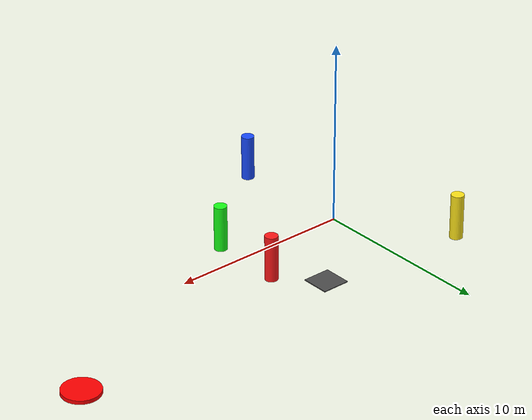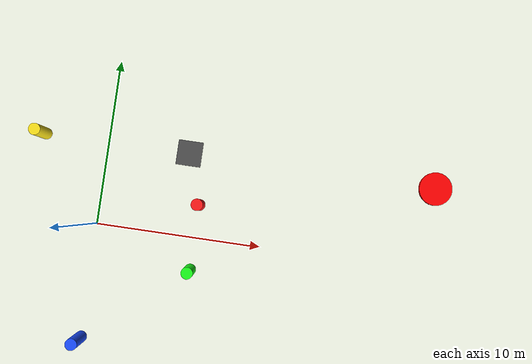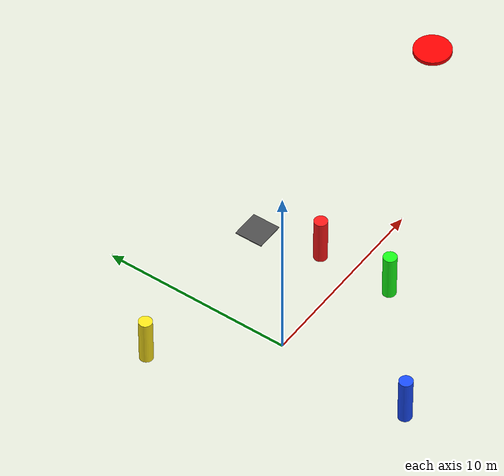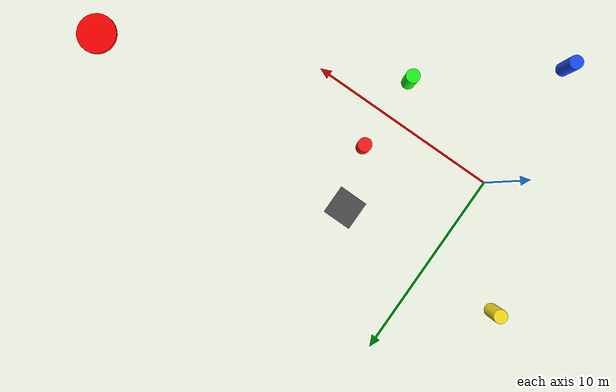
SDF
<sdf version="1.6">
 <world name="waves">
  <physics name="default" type="gz-physics">
   <max_step_size>0.001</max_step_size>
   <real_time_update_rate>1000</real_time_update_rate>
  </physics>
  <plugin filename="gz-sim-physics-system" name="gz::sim::systems::Physics"/>
  <plugin filename="gz-sim-sensors-system" name="gz::sim::systems::Sensors">
   <render_engine>ogre2</render_engine>
   <background_color>0.8 0.8 0.8</background_color>
  </plugin>
  <plugin filename="gz-sim-scene-broadcaster-system" name="gz::sim::systems::SceneBroadcaster"/>
  <plugin filename="gz-sim-user-commands-system" name="gz::sim::systems::UserCommands"/>
  <plugin filename="gz-sim-imu-system" name="gz::sim::systems::Imu"/>
  <scene><ambient>1.0 1.0 1.0</ambient><background>0.8 0.8 0.8</background></scene>
  <light type="directional" name="sun">
   <pose>0 0 10 0 0 0</pose>
   <diffuse>0.8 0.8 0.8 1</diffuse>
   <specular>0.6 0.6 0.6 1</specular>
   <direction>-0.5 0.1 -0.9</direction>
  </light>
  <model name="axes">
   <static>1</static>
   <link name="link">
    <visual name="r">
     <cast_shadows>0</cast_shadows>
     <pose>5 0 0.1 0 0 0</pose>
     <geometry><box><size>10 0.01 0.01</size></box></geometry>
     <material>
      <ambient>1 0 0 1</ambient>
      <diffuse>1 0 0 1</diffuse>
      <emissive>1 0 0 1</emissive>
      <specular>0.5 0.5 0.5 1</specular>
     </material>
    </visual>
    <visual name="g">
     <cast_shadows>0</cast_shadows>
     <pose>0 5 0.1 0 0 0</pose>
     <geometry><box><size>0.01 10 0.01</size></box></geometry>
     <material>
      <ambient>0 1 0 1</ambient>
      <diffuse>0 1 0 1</diffuse>
      <emissive>0 1 0 1</emissive>
      <specular>0.5 0.5 0.5 1</specular>
     </material>
    </visual>
    <visual name="b">
     <cast_shadows>0</cast_shadows>
     <pose>0 0 5.1 0 0 0</pose>
     <geometry><box><size>0.01 0.01 10</size></box></geometry>
     <material>
      <ambient>0 0 1 1</ambient>
      <diffuse>0 0 1 1</diffuse>
      <emissive>0 0 1 1</emissive>
      <specular>0.5 0.5 0.5 1</specular>
     </material>
    </visual>
   </link>
  </model>
  <model name="drone_platform">
   <static>true</static>
   <pose>5 5 0.5 0 0 0</pose>
   <link name="link">
    <collision name="collision"><geometry><box><size>0.5 0.5 0.05</size></box></geometry></collision>
    <visual name="visual">
     <geometry><box><size>1.5 1.5 0.05</size></box></geometry>
     <material><ambient>0.3 0.3 0.3 1</ambient><diffuse>0.3 0.3 0.3 1</diffuse></material>
    </visual>
   </link>
  </model>
  <model name="red_cylinder_platform">
   <static>true</static>
   <pose>20 5 0.5 0 0 0</pose>
   <link name="link">
    <visual name="visual">
     <geometry><cylinder><radius>1.0</radius><length>0.2</length></cylinder></geometry>
     <material>
      <ambient>1 0 0 1</ambient>
      <diffuse>1 0 0 1</diffuse>
      <emissive>0.8 0 0 1</emissive>
      <specular>0.3 0.3 0.3 1</specular>
     </material>
    </visual>
   </link>
  </model>
  <model name="duba_1">
   <static>true</static>
   <pose>6 2 0.9 0 0 0</pose>
   <link name="link">
    <collision name="collision">
     <geometry><cylinder><radius>0.35</radius><length>2.5</length></cylinder></geometry>
    </collision>
    <visual name="visual">
     <geometry><cylinder><radius>0.35</radius><length>2.5</length></cylinder></geometry>
     <material><ambient>1 0.1 0.1 1</ambient><diffuse>1 0.1 0.1 1</diffuse></material>
    </visual>
   </link>
  </model>
  <model name="duba_2">
   <static>true</static>
   <pose>6 -2 0.9 0 0 0</pose>
   <link name="link">
    <collision name="collision">
     <geometry><cylinder><radius>0.35</radius><length>2.5</length></cylinder></geometry>
    </collision>
    <visual name="visual">
     <geometry><cylinder><radius>0.35</radius><length>2.5</length></cylinder></geometry>
     <material><ambient>0.1 1 0.1 1</ambient><diffuse>0.1 1 0.1 1</diffuse></material>
    </visual>
   </link>
  </model>
  <model name="duba_3">
   <static>true</static>
   <pose>-4 5 0.9 0 0 0</pose>
   <link name="link">
    <collision name="collision">
     <geometry><cylinder><radius>0.35</radius><length>2.5</length></cylinder></geometry>
    </collision>
    <visual name="visual">
     <geometry><cylinder><radius>0.35</radius><length>2.5</length></cylinder></geometry>
     <material><ambient>1 0.9 0.1 1</ambient><diffuse>1 0.9 0.1 1</diffuse></material>
    </visual>
   </link>
  </model>
  <model name="duba_4">
   <static>true</static>
   <pose>0 -7 0.9 0 0 0</pose>
   <link name="link">
    <collision name="collision">
     <geometry><cylinder><radius>0.35</radius><length>2.5</length></cylinder></geometry>
    </collision>
    <visual name="visual">
     <geometry><cylinder><radius>0.35</radius><length>2.5</length></cylinder></geometry>
     <material><ambient>0.1 0.3 1 1</ambient><diffuse>0.1 0.3 1 1</diffuse></material>
    </visual>
   </link>
  </model>
 </world>
</sdf>
